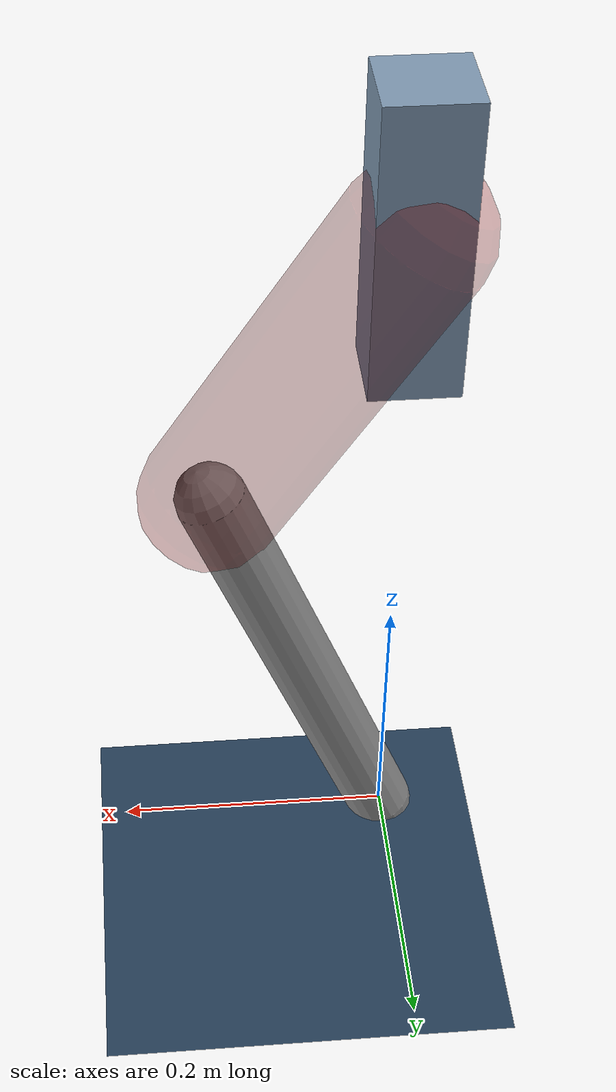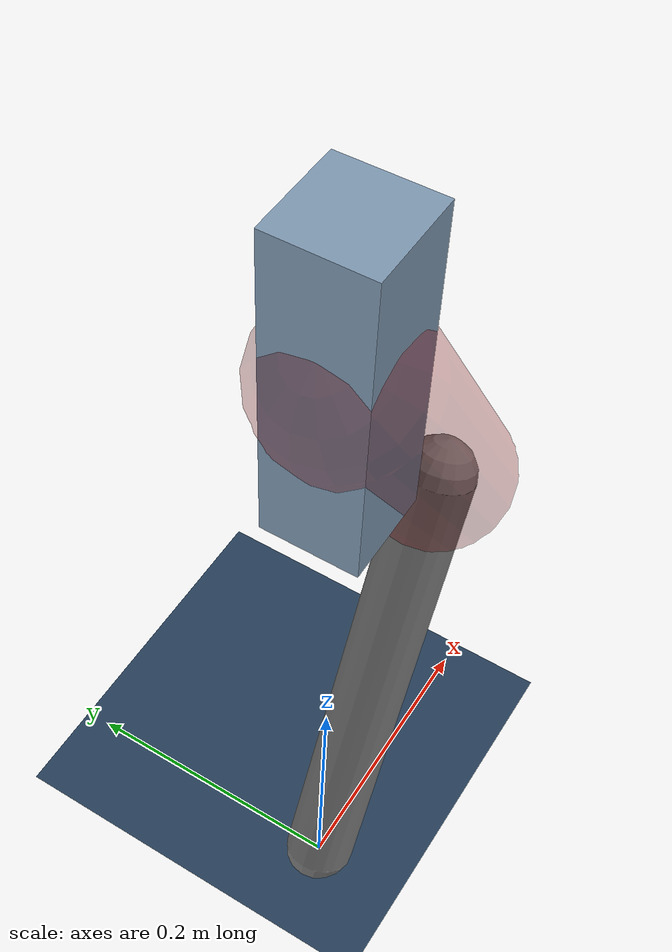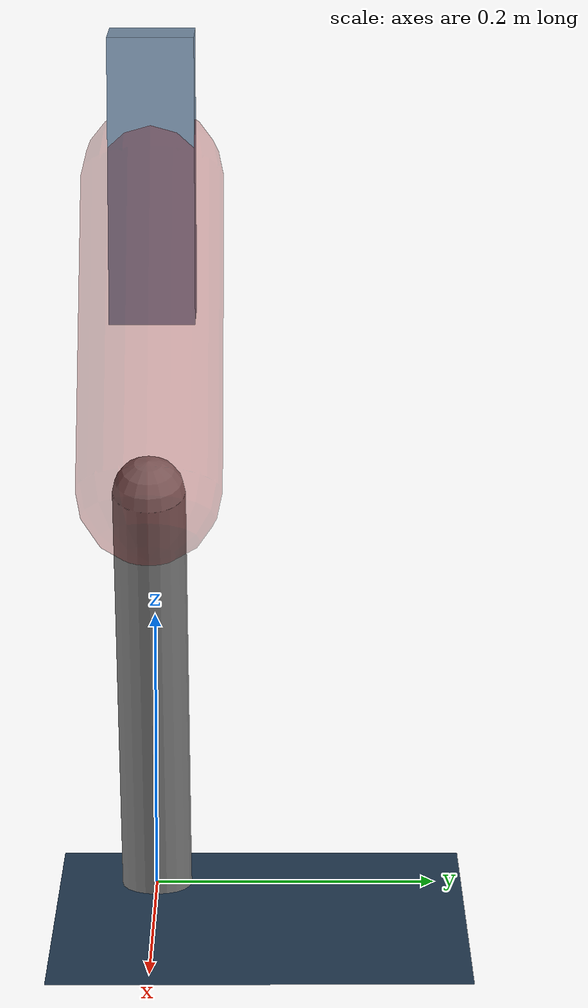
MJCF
<mujoco model="Hopper2D">
	<compiler inertiafromgeom="true" angle="radian" />
	<option timestep="0.001" integrator="implicit" cone="elliptic" solver="Newton" tolerance="1e-10" />

	<default>
		<geom contype="1" conaffinity="1" condim="3" friction="2 0.005 0.0001" solref="0.005 1" />
		<joint limited="true" damping="0.1" />
	</default>

	<asset>
		<texture name="skybox" type="skybox" builtin="gradient" rgb1=".4 .6 .8" rgb2="0 0 0" width="800" height="800" />
		<texture name="grid" type="2d" builtin="checker" rgb1=".1 .2 .3" rgb2=".2 .3 .4" width="300" height="300" mark="edge" markrgb=".2 .3 .4" />
		<material name="ground" texture="grid" texrepeat="1 1" texuniform="true" reflectance="0.1" />
		<material name="leg" rgba="0.5 0.6 0.7 1" />
	</asset>

	<worldbody>

		<geom name="floor" type="plane" size="5 5 0.25" material="ground" />

		<light directional="false" diffuse="0.8 0.8 0.8" specular="0.3 0.3 0.3" pos="0 0 2" dir="0 0 -1" />
		<light mode="targetbodycom" target="base" directional="false" diffuse="0.8 0.8 0.8" specular="0.3 0.3 0.3" pos="0 0 2" dir="0 0 -1" />

		<camera name="fixed" pos="0 -2 1" xyaxes="1 0 0 0 0 1" />
		<camera name="tracking" mode="trackcom" pos="0 -3 1" />

		<body name="root" pos="0 0 0.516437971047826">
			<joint name="slide_x" type="slide" axis="1 0 0" range="-100 100" />
			<joint name="slide_z" type="slide" axis="0 0 1" range="0 10" />

			<body name="base" pos="0 0 0">
				<geom name="torso" type="box" size="0.03 0.03 0.1" mass="1.915" material="leg" />

				<body name="link1" pos="0 0 0" euler="0 0.9955624679686352 0">
					<joint type="hinge" axis="0 -1 0" pos="0 0 0" name="hinge1" limited="true" range="-3.14 3.14" stiffness="0" damping="0.1" />
					<geom name="thigh" type="capsule" fromto="0 0 0 0.23511062841856478 0 0" size="0.05" rgba="0.5 0 0 0.3" mass="0.818076571046412" />

					<body name="link2" pos="0.23511062841856478 0 0" euler="0 0.9563924622853868 0">
						<joint type="hinge" axis="0 -1 0" pos="0 0 0" name="hinge2" limited="true" range="-3.14 3.14" stiffness="0" damping="0.1" />
						<geom name="shank" type="capsule" fromto="0 0 0 0.3438408397622674 0 0" size="0.025" mass="0.518972671809814" />

					</body>
				</body>
			</body>
		</body>
	</worldbody>

	<actuator>
		<motor name="torque1" joint="hinge1" ctrlrange="-28.91031269589324 28.91031269589324" ctrllimited="true" gear="1" />
		<motor name="torque2" joint="hinge2" ctrlrange="-86.4369783278217 86.4369783278217" ctrllimited="true" gear="1" />
	</actuator>
</mujoco>
